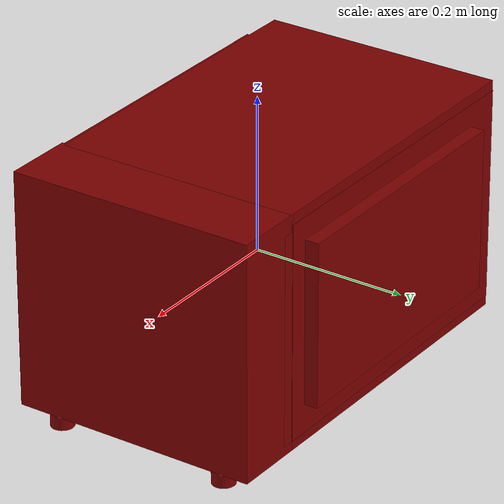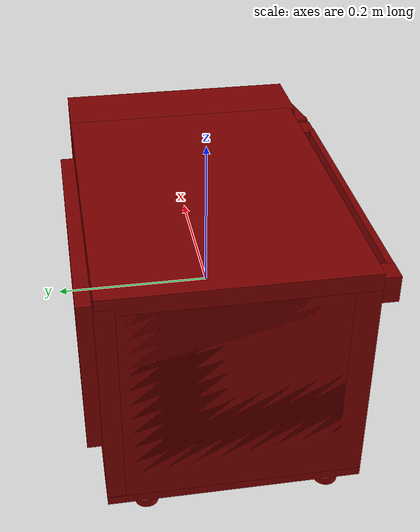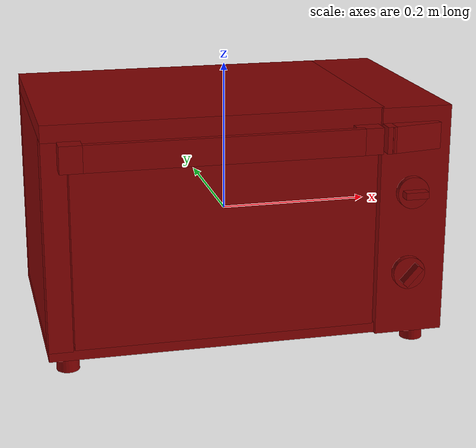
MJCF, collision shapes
<?xml version='1.0' encoding='UTF-8'?>
<mujoco model="model">
  <option timestep="0.002" gravity="0.0 0.0 -9.81"/>
  <compiler angle="radian"/>
  <asset>
    <mesh file="visuals/door.obj" name="door_vis"/>
    <mesh file="visuals/knob_temp.obj" name="knob_temp_vis"/>
    <mesh file="visuals/knob_time.obj" name="knob_time_vis"/>
    <mesh file="visuals/rack0.obj" name="rack0_vis"/>
    <mesh file="visuals/Body001.obj" name="Body001_vis"/>
    <mesh file="visuals/window.obj" name="window_vis"/>
    <texture file="visuals/T_BC001.png" name="Body001_material" type="2d"/>
    <material name="Body001_material" rgba="1 1 1 1.0" texture="Body001_material" shininess="0.141421377658844" specular="1"/>
    <texture file="visuals/T_BC001.png" name="door_material" type="2d"/>
    <material name="door_material" rgba="1 1 1 1.0" texture="door_material" shininess="0.141421377658844" specular="1"/>
    <texture file="visuals/T_BC001.png" name="window_material" type="2d"/>
    <material name="window_material" rgba="1 1 1 0.75" texture="window_material" shininess="0.141421377658844" specular="0.1"/>
    <texture file="visuals/T_BC001.png" name="knob_temp_material" type="2d"/>
    <material name="knob_temp_material" rgba="1 1 1 1.0" texture="knob_temp_material" shininess="0.141421377658844" specular="1"/>
    <texture file="visuals/T_BC001.png" name="knob_time_material" type="2d"/>
    <material name="knob_time_material" rgba="1 1 1 1.0" texture="knob_time_material" shininess="0.141421377658844" specular="1"/>
    <texture file="visuals/T_BC001.png" name="rack0_material" type="2d"/>
    <material name="rack0_material" rgba="1 1 1 1.0" texture="rack0_material" shininess="0.141421377658844" specular="1"/>
  </asset>
  <default>
    <default class="visual">
      <geom conaffinity="0" contype="0" group="1" type="mesh"/>
    </default>
    <default class="collision">
      <geom group="0" rgba="0.5 0 0 0.5"/>
    </default>
    <default class="spawn">
      <geom group="0" rgba="1 1 1 0.5" contype="0" conaffinity="0"/>
      <site group="0" rgba="1 1 1 0.5"/>
    </default>
    <default class="region">
      <geom group="1" conaffinity="0" contype="0" rgba="0 1 0 0"/>
    </default>
  </default>
  <worldbody>
    <body>
      <body name="object">
        <geom mesh="Body001_vis" type="mesh" solimp="0.998 0.998 0.001" solref="0.001 1" friction="0.95 0.3 0.1" class="visual" material="Body001_material"/>
        <geom class="collision" type="box" pos="-0.04491190 0.15224161 0.01282259" size="0.2140880972146988 0.011358464136719704 0.13912859559059143" quat="1.0 0.0 0.0 0.0"/>
        <geom class="collision" type="box" pos="-0.04373375 0.00569444 0.15229528" size="0.21526534855365753 0.15740522742271423 0.012799685820937157" quat="1.0 0.0 0.0 0.0"/>
        <geom class="collision" type="box" pos="-0.24348645 0.00569444 0.00812054" size="0.01551310159265995 0.15740546584129333 0.13517946004867554" quat="1.0 0.0 0.0 0.0"/>
        <geom class="collision" type="box" pos="-0.04373369 0.00569444 -0.13176702" size="0.2152654230594635 0.1574053019285202 0.00688356626778841" quat="1.0 0.0 0.0 0.0"/>
        <geom class="collision" type="box" pos="0.21329430 0.00278296 0.01322218" size="0.04570510983467102 0.1603168249130249 0.15187261998653412" quat="1.0 0.0 0.0 0.0"/>
        <geom class="collision" type="box" pos="0.20621932 -0.16207626 0.12853372" size="0.03439680486917496 0.010685496963560581 0.01701904833316803" quat="0.9960876107215881 0.0 0.0 0.08837131410837173"/>
        <geom class="collision" type="box" pos="0.17326455 -0.16761263 0.12853372" size="0.005682479124516249 0.010685497894883156 0.01701904833316803" quat="1.0 0.0 0.0 0.0"/>
        <geom class="collision" type="box" pos="-0.03256284 0.17163591 0.01751526" size="0.17744673788547516 0.010239753872156143 0.10587236285209656" quat="1.0 0.0 0.0 0.0"/>
        <geom class="collision" type="box" pos="-0.22239554 0.00153404 0.06460548" size="0.004804165568202734 0.1254395842552185 0.007929136976599693" quat="1.0 0.0 0.0 0.0"/>
        <geom class="collision" type="box" pos="-0.22364412 0.00153404 0.02954123" size="0.004804165568202734 0.1254395842552185 0.013520335778594017" quat="1.0 0.0 0.0 0.0"/>
        <geom class="collision" type="box" pos="-0.22239554 0.00153404 -0.01711983" size="0.005446018185466528 0.1254395842552185 0.02287634275853634" quat="1.0 0.0 0.0 0.0"/>
        <geom class="collision" type="box" pos="-0.22154871 0.00153404 -0.05700907" size="0.004804163705557585 0.1254395842552185 0.007625168655067682" quat="1.0 0.0 0.0 0.0"/>
        <geom class="collision" type="box" pos="0.14603738 0.00153404 0.06460548" size="0.004804184660315514 0.1254395842552185 0.007929136976599693" quat="1.0 0.0 0.0 0.0"/>
        <geom class="collision" type="box" pos="0.14581195 0.00153404 0.03032159" size="0.004804184660315514 0.1254395842552185 0.013520327396690845" quat="1.0 0.0 0.0 0.0"/>
        <geom class="collision" type="box" pos="0.14603738 0.00153404 -0.01711983" size="0.0054460372775793076 0.1254395842552185 0.02287634275853634" quat="1.0 0.0 0.0 0.0"/>
        <geom class="collision" type="box" pos="0.14519055 0.00153404 -0.05700907" size="0.004804184194654226 0.1254395842552185 0.007625168655067682" quat="1.0 0.0 0.0 0.0"/>
        <geom class="collision" type="cylinder" pos="0.23406057 -0.11655891 -0.15113163" size="0.014817764982581139 0.013552319258451462" quat="7.549790126404332e-08 1.0 -1.1102230246251565e-16 1.1102229584507075e-16"/>
        <geom class="collision" type="cylinder" pos="0.23406057 0.11377754 -0.15113163" size="0.014817764982581139 0.013552319258451462" quat="7.549790126404332e-08 1.0 -1.1102230246251565e-16 1.1102229584507075e-16"/>
        <geom class="collision" type="cylinder" pos="-0.23203816 -0.11655891 -0.15113163" size="0.014817764982581139 0.013552319258451462" quat="7.549790126404332e-08 1.0 -1.1102230246251565e-16 1.1102229584507075e-16"/>
        <geom class="collision" type="cylinder" pos="-0.23203816 0.11377754 -0.15113163" size="0.014817764982581139 0.013552319258451462" quat="7.549790126404332e-08 1.0 -1.1102230246251565e-16 1.1102229584507075e-16"/>
        <geom class="collision" type="box" pos="-0.24170592 0.02102234 0.00812054" size="0.017293626442551613 0.14207758009433746 0.13517946004867554" quat="1.0 0.0 0.0 0.0"/>
        <geom class="collision" type="box" pos="0.16682625 0.02102234 0.00812054" size="0.017293626442551613 0.14207758009433746 0.13517946004867554" quat="1.0 0.0 0.0 0.0"/>
        <body name="door">
          <joint axis="1.0 0.0 0.0" pos="-0.03951699 -0.16112190 -0.12027641" limited="true" name="door_joint" range="0.0 1.4707963267948966" type="hinge" damping="1" frictionloss="1" armature=".01" stiffness="0.05"/>
          <geom mesh="door_vis" type="mesh" solimp="0.998 0.998 0.001" solref="0.001 1" friction="0.95 0.3 0.1" class="visual" material="door_material"/>
          <geom class="collision" type="box" pos="-0.03282071 -0.14801726 0.00753098" size="0.1943037509918213 0.013378138653934002 0.1289387196302414" quat="1.0 0.0 0.0 0.0" name="door_main"/>
          <geom class="collision" type="box" pos="-0.03753169 -0.17528993 0.12853372" size="0.1759776920080185 0.004100143909454346 0.017019083723425865" quat="1.0 0.0 0.0 0.0" name="door_handle_main"/>
          <geom class="collision" type="box" pos="-0.22575647 -0.16848550 0.12853372" size="0.01420120894908905 0.011237244121730328 0.017019076272845268" quat="1.0 0.0 0.0 0.0"/>
          <geom class="collision" type="box" pos="0.14575523 -0.16793375 0.12853372" size="0.01632223092019558 0.0106855109333992 0.01701907068490982" quat="1.0 0.0 0.0 0.0"/>
          <body name="window">
            <geom mesh="window_vis" type="mesh" solimp="0.998 0.998 0.001" solref="0.001 1" friction="0.95 0.3 0.1" class="visual" material="window_material"/>
            <geom class="collision" type="box" pos="-0.03966673 -0.14717241 0.01346565" size="0.15619301795959473 0.011817453429102898 0.09648047387599945" quat="1.0 0.0 0.0 0.0"/>
          </body>
        </body>
        <body name="knob_temp">
          <joint axis="0.0 1.0 0.0" pos="0.20854701 -0.17021730 0.05495206" limited="true" name="knob_temp_joint" range="0.0 5.235987755982989" type="hinge" damping="0.05" armature="1" frictionloss="0.75"/>
          <geom mesh="knob_temp_vis" type="mesh" solimp="0.998 0.998 0.001" solref="0.001 1" friction="0.95 0.3 0.1" class="visual" material="knob_temp_material"/>
          <geom class="collision" type="cylinder" pos="0.20876767 -0.16428209 0.05516789" size="0.020782804116606712 0.004295899532735348" quat="0.7071068286895752 0.7071067690849304 0.0 0.0" friction="100 0.5 0.01"/>
          <geom class="collision" type="box" pos="0.20876765 -0.17535544 0.05516796" size="0.0149827366694808 0.006811194587498903 0.004383939318358898" quat="1.0 0.0 0.0 0.0" name="knob_temp_main" friction="100 0.5 0.01"/>
        </body>
        <body name="knob_time">
          <joint axis="0.0 1.0 0.0" pos="0.20807022 -0.17021730 -0.05269055" limited="true" name="knob_time_joint" range="0.0 5.497787143782138" type="hinge" damping="0.05" armature="1" frictionloss="0.75"/>
          <geom mesh="knob_time_vis" type="mesh" solimp="0.998 0.998 0.001" solref="0.001 1" friction="0.95 0.3 0.1" class="visual" material="knob_time_material"/>
          <geom class="collision" type="cylinder" pos="0.20765947 -0.16412177 -0.05310133" size="0.02137417532503605 0.004418139345943928" quat="0.7071068286895752 0.7071067690849304 0.0 0.0" friction="100 0.5 0.01"/>
          <geom class="collision" type="box" pos="0.20765947 -0.17555413 -0.05310133" size="0.015386233106255531 0.007005007937550545 0.004426498897373676" quat="0.914474606513977 1.6456271242797814e-16 -0.40464332699775696 1.3850357305500438e-08" name="knob_time_main" friction="100 0.5 0.01"/>
        </body>
        <body name="rack0">
          <geom class="region" name="reg_rack0" type="box" pos="-0.037654889999999996 -0.004722564999999998 0.07169399" size="0.15731159 0.106541025 0.0681962"/>
          <joint axis="0.0 -1.0 0.0" pos="-0.03837361 -0.00475379 0.00594592" limited="true" name="rack0_joint" range="0.0 0.2" type="slide" damping="1" frictionloss="1" armature=".01" stiffness="0.05"/>
          <geom mesh="rack0_vis" type="mesh" solimp="0.998 0.998 0.001" solref="0.001 1" friction="0.95 0.3 0.1" class="visual" material="rack0_material"/>
          <geom class="collision" type="box" pos="-0.21577507 -0.00461658 0.01161791" size="0.008577265776693821 0.10600447654724121 0.001667578355409205" quat="1.0 0.0 0.0 0.0"/>
          <geom class="collision" type="box" pos="-0.20187555 -0.00462306 0.00682768" size="0.008577265776693821 0.10601095855236053 0.0016675611259415746" quat="0.9440328478813171 -2.0632491271044273e-08 0.3298514783382416 7.209132402152818e-09"/>
          <geom class="collision" type="box" pos="0.12622657 -0.00462306 0.00682768" size="0.008577265776693821 0.10601095855236053 0.0016675611259415746" quat="7.127249546101666e-08 -0.9440328478813171 -2.4903092921135794e-08 -0.3298514783382416"/>
          <geom class="collision" type="box" pos="0.13933556 -0.00461658 0.01161791" size="0.008577265776693821 0.10600447654724121 0.0016675770748406649" quat="1.0 0.0 0.0 0.0"/>
          <geom class="collision" type="box" pos="-0.03711260 -0.00480515 0.00117563" size="0.15898673236370087 0.10659922659397125 0.0024258748162537813" quat="1.0 0.0 0.0 0.0"/>
        </body>
        <geom class="region" name="reg_main" type="box" pos="-4.999999997368221e-09 0.010531625000000003 0.0" size="0.259999525 0.17302758499999998 0.16609502"/>
      </body>
    </body>
  </worldbody>
  <actuator>
    <motor name="door_joint_actuator" joint="door_joint" gear="50"/>
    <motor name="knob_temp_joint_actuator" joint="knob_temp_joint" gear="50"/>
    <motor name="knob_time_joint_actuator" joint="knob_time_joint" gear="50"/>
    <motor name="rack0_joint_actuator" joint="rack0_joint" gear="50"/>
  </actuator>
</mujoco>
